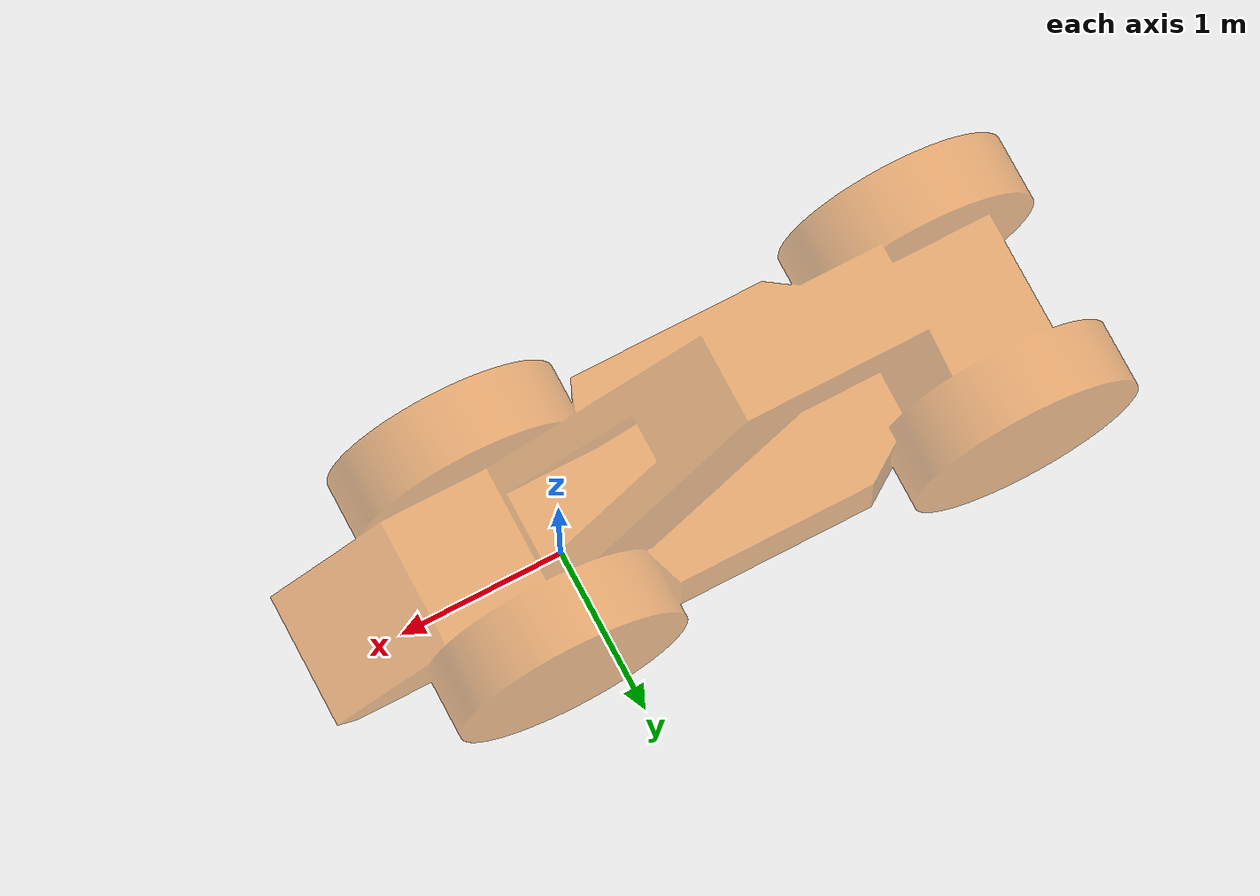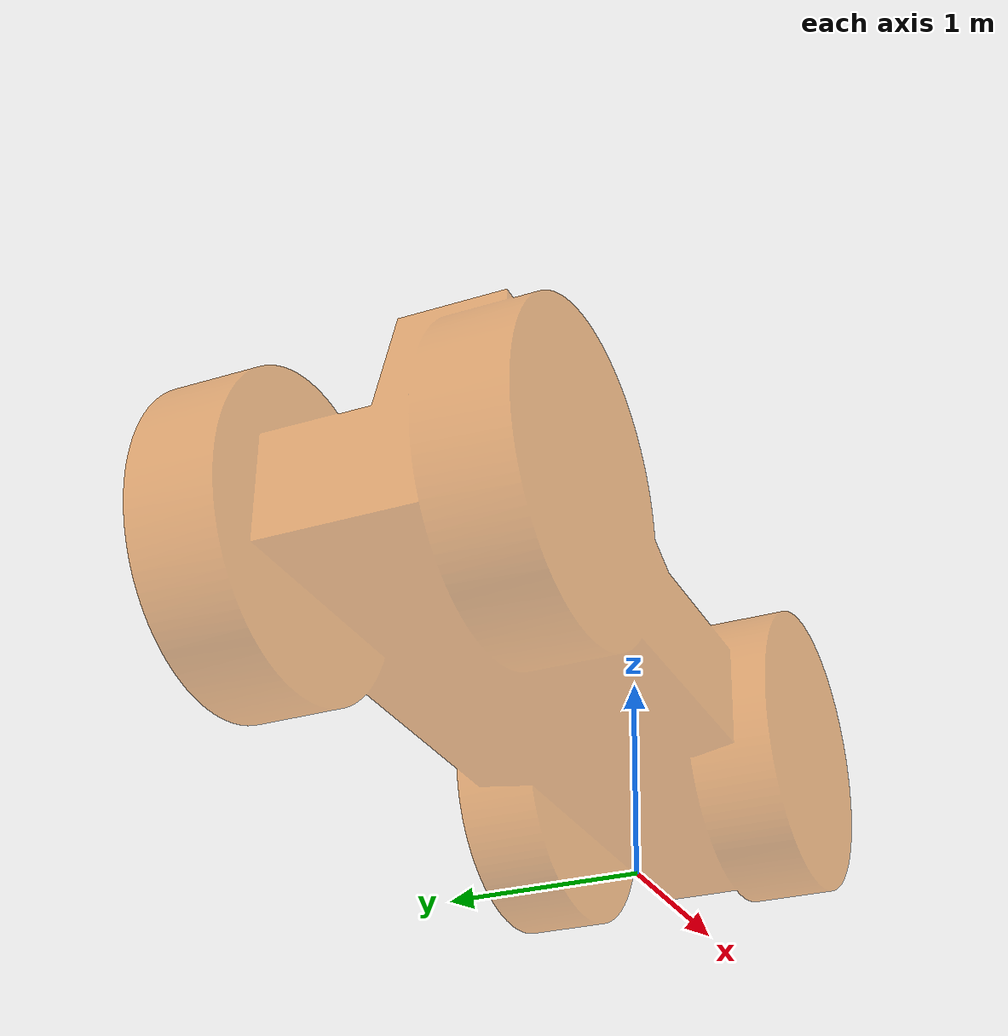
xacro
<?xml version="1.0"?>

<robot xmlns:xacro="http://www.ros.org/wiki/xacro"
    xmlns:sensor="http://playerstage.sourceforge.net/gazebo/xmlschema/#sensor"
    xmlns:controller="http://playerstage.sourceforge.net/gazebo/xmlschema/#controller"
    xmlns:interface="http://playerstage.sourceforge.net/gazebo/xmlschema/#interface"
    name="erp42">

  <link name="base_link">
    <visual>
      <origin rpy="1.5708 0 1.5708" xyz="-1.0 0 0.4"/>
      <geometry>
         <mesh filename="package://mm_vis/urdf/erp42.stl" scale="0.0014 0.0024 0.0024"/>
      </geometry>
      <material name="car_orange">
        <color rgba="0.92 0.45 0.02 0.5"/>
      </material>
    </visual>
  </link>
</robot>
